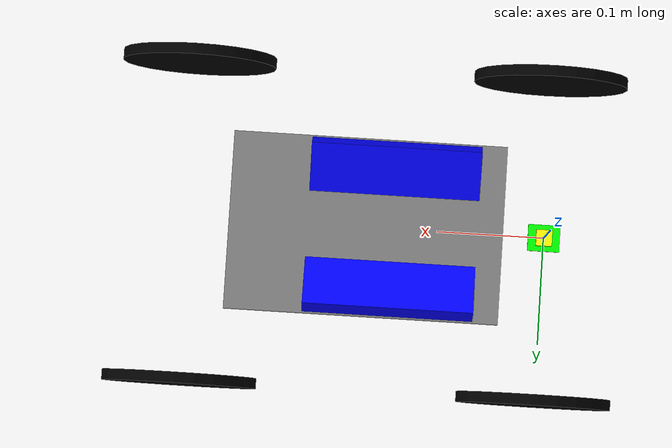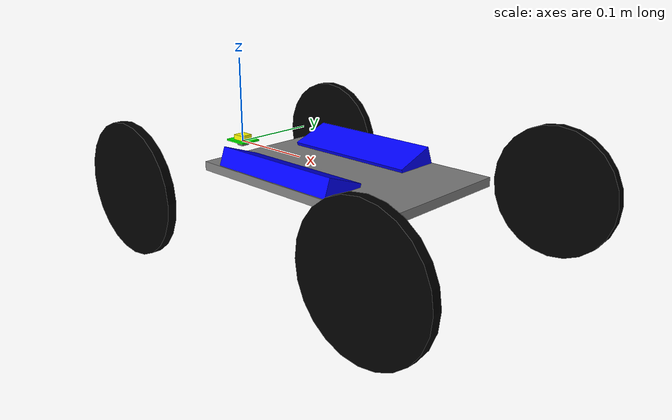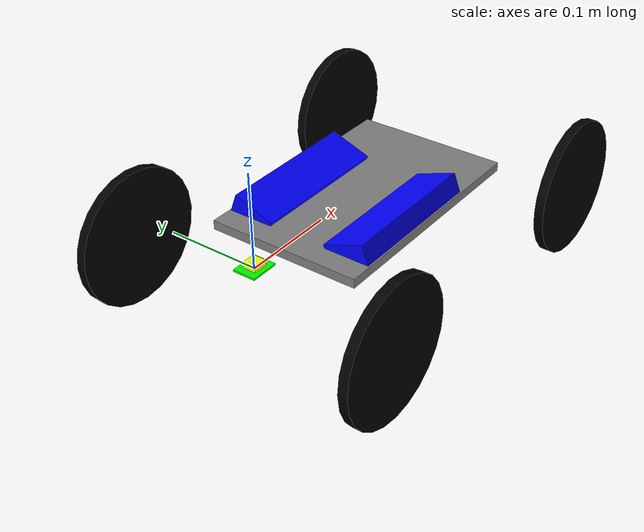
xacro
<?xml version="1.0"?>

<robot name="traxxas" xmlns:xacro="http://www.ros.org/wiki/xacro">

  <!-- Degree-to-radian conversions -->
  <xacro:property name="degrees_45" value="0.785398163"/>
  <xacro:property name="degrees_90" value="1.57079633"/>

  <!-- chassis_length is measured along the x axis, chassis_width
       along the y axis, and chassis_height along the z axis. -->
  <xacro:property name="chassis_length" value="0.258"/>
  <xacro:property name="chassis_width" value="0.168"/>
  <xacro:property name="chassis_height" value="0.01"/>
  <xacro:property name="chassis_mass" value="2.788"/>

  <xacro:property name="battery_x_offset" value="0.055"/>
  <xacro:property name="battery_dist" value="0.065"/>
  <xacro:property name="battery_comp_depth" value="0.02"/>
  <xacro:property name="battery_comp_angle" value="0.34906585"/>
  <xacro:property name="battery_length" value="0.16"/>
  <xacro:property name="battery_width" value="0.047"/>
  <xacro:property name="battery_height" value="0.024"/>
  <xacro:property name="battery_mass" value="0.5025"/>

  <xacro:property name="hub_dia" value="0.09652"/>
  <xacro:property name="tire_dia" value="0.14605"/>
  <xacro:property name="tire_width" value="0.01"/>
  <xacro:property name="hex_hub_depth" value="${tire_width / 2 - axle_length}"/>
  <xacro:property name="wheel_mass" value="0.29"/>

  <xacro:property name="wheelbase" value="0.335"/>
  <xacro:property name="hex_hub_dist" value="0.365"/>
  <xacro:property name="axle_length" value="0.03"/>
  <xacro:property name="wheel_travel" value="0.084"/>
  <xacro:property name="shock_z_offset" value="0.0655"/>

  <xacro:property name="shock_eff_limit" value="12.5106"/>
  <xacro:property name="shock_vel_limit" value="1000"/>

  <xacro:property name="axle_eff_limit" value="5.12766"/>
  <xacro:property name="axle_vel_limit" value="244.8696"/>

  <!-- These constants are used to simulate a Traxxas 2056 servo operated at
       6 V. servo_stall_torque is measured in N m. servo_no_load_speed is
       measured in rad/s. -->
  <xacro:property name="servo_stall_torque" value="3.4"/>
  <xacro:property name="servo_no_load_speed" value="4.553"/>

  <material name="battery_mat">
    <color rgba="0 0 1 1"/>
  </material>
  <material name="chassis_mat">
    <color rgba="0.5 0.5 0.5 1"/>
  </material>
  <material name="tire_mat">
    <color rgba="0 0 0 1"/>
  </material>
  <material name="imu_mat">
    <color rgba="0 1 0 1"/>
  </material>

  <!-- Null inertial element. This is needed to make the model work with
       Gazebo. -->
  <xacro:macro name="null_inertial">
    <inertial>
      <mass value="0.001"/>
      <inertia ixx="0.001" ixy="0" ixz="0" iyy="0.001" iyz="0" izz="0.001"/>
    </inertial>
  </xacro:macro>

  <!-- Inertia of a solid cuboid. Width is measured along the x axis, depth
       along the y axis, and height along the z axis. -->
  <xacro:macro name="solid_cuboid_inertial"
               params="width depth height mass *origin">
    <inertial>
      <xacro:insert_block name="origin"/>
      <mass value="${mass}"/>
      <inertia ixx="${mass * (depth * depth + height * height) / 12}"
               ixy="0" ixz="0"
               iyy="${mass * (width * width + height * height) / 12}"
               iyz="0"
               izz="${mass * (width * width + depth * depth) / 12}"/>
    </inertial>
  </xacro:macro>

  <xacro:macro name="thick_walled_tube_inertial"
               params="inner_rad outer_rad height mass">
    <inertial>
      <mass value="${mass}"/>
      <inertia ixx="${(1 / 12) * mass * (3 * (inner_rad * inner_rad +
                    outer_rad * outer_rad) + height * height)}"
               ixy="0" ixz="0"
               iyy="${(1 / 12) * mass * (3 * (inner_rad * inner_rad +
                    outer_rad * outer_rad) + height * height)}"
               iyz="0"
               izz="${mass * (inner_rad * inner_rad +
                    outer_rad * outer_rad) / 2}"/>
    </inertial>
  </xacro:macro>

  <!-- Battery -->
  <xacro:macro name="battery" params="prefix reflect">
    <joint name="chassis_to_${prefix}_battery" type="fixed">
      <parent link="chassis"/>
      <child link="${prefix}_battery_offset"/>
      <origin xyz="${battery_x_offset - battery_length / 2}
                   ${reflect * battery_dist / 2}
                   0"
              rpy="${reflect * battery_comp_angle} 0 0"/>
    </joint>

    <link name="${prefix}_battery_offset">
      <xacro:null_inertial/>
    </link>

    <joint name="offset_to_${prefix}_battery" type="fixed">
      <parent link="${prefix}_battery_offset"/>
      <child link="${prefix}_battery"/>
      <origin xyz="0
                   ${reflect * battery_width / 2}
                   ${(battery_height / 2) - battery_comp_depth}"/>
    </joint>

    <link name="${prefix}_battery">
      <visual>
        <geometry>
          <box size="${battery_length} ${battery_width} ${battery_height}"/>
        </geometry>
        <material name="battery_mat"/>
      </visual>

      <collision>
        <geometry>
          <box size="${battery_length} ${battery_width} ${battery_height}"/>
        </geometry>
      </collision>

      <xacro:solid_cuboid_inertial
         width="${battery_length}" depth="${battery_width}"
         height="${battery_height}" mass="${battery_mass}">
        <origin/>
      </xacro:solid_cuboid_inertial>
    </link>

    <gazebo reference="${prefix}_battery">
      <material>Gazebo/Blue</material>
    </gazebo>
  </xacro:macro>

  <!-- Shock absorber -->
  <xacro:macro name="shock"
               params="lr_prefix fr_prefix lr_reflect fr_reflect child">
    <joint name="${lr_prefix}_${fr_prefix}_shock" type="fixed">
      <parent link="chassis"/>
      <child link="${child}"/>

      <origin xyz="${fr_reflect * wheelbase / 2}
                   ${lr_reflect * ((hex_hub_dist / 2) - axle_length)}
                   ${(wheel_travel / 2) - shock_z_offset}"/>
      <axis xyz="0 0 -1"/>
      <limit lower="${-wheel_travel / 2}" upper="${wheel_travel / 2}"
             effort="${shock_eff_limit}" velocity="${shock_vel_limit}"/>
    </joint>
  </xacro:macro>

  <!-- The "wheel" macro defines an axle carrier, axle, and wheel. -->
  <xacro:macro name="wheel" params="lr_prefix fr_prefix lr_reflect">
    <link name="${lr_prefix}_${fr_prefix}_axle_carrier">
      <xacro:null_inertial/>
    </link>

    <!-- The left and right axles have the same axis so that identical
         rotation values cause the wheels to rotate in the same direction. -->
    <joint name="${lr_prefix}_${fr_prefix}_axle" type="continuous">
      <parent link="${lr_prefix}_${fr_prefix}_axle_carrier"/>
      <child link="${lr_prefix}_${fr_prefix}_wheel"/>
      <origin rpy="${degrees_90} 0 0"/>
      <axis xyz="0 0 -1"/>
      <limit effort="${axle_eff_limit}" velocity="${axle_vel_limit}"/>
    </joint>

    <link name="${lr_prefix}_${fr_prefix}_wheel">
      <visual>
        <origin xyz="0
                     ${lr_reflect * (axle_length - (tire_width /
                     2 - hex_hub_depth))}
                     0"/>
        <geometry>
          <cylinder radius="${tire_dia / 2}" length="${tire_width}"/>
        </geometry>
        <material name="tire_mat"/>
      </visual>

      <collision>
        <origin xyz="0
                     ${lr_reflect * (axle_length - (tire_width /
                     2 - hex_hub_depth))}
                     0"/>
        <geometry>
          <cylinder radius="${tire_dia / 2}" length="${tire_width}"/>
        </geometry>
      </collision>

      <xacro:thick_walled_tube_inertial
          inner_rad="${hub_dia / 2}" outer_rad="${tire_dia / 2}"
          height="${tire_width}" mass="${wheel_mass}"/>
    </link>

    <gazebo reference="${lr_prefix}_${fr_prefix}_wheel">
      <material>Gazebo/Black</material>
      <mu1>0.9</mu1>
      <mu2>0.9</mu2>
    </gazebo>
  </xacro:macro>

  <!-- Front wheel -->
  <xacro:macro name="front_wheel"
               params="lr_prefix fr_prefix lr_reflect fr_reflect">
    <xacro:shock lr_prefix="${lr_prefix}" fr_prefix="${fr_prefix}"
                 lr_reflect="${lr_reflect}" fr_reflect="${fr_reflect}"
                 child="${lr_prefix}_steering_link"/>

    <link name="${lr_prefix}_steering_link">
      <xacro:null_inertial/>
    </link>

    <joint name="${lr_prefix}_steering_joint" type="revolute">
      <parent link="${lr_prefix}_steering_link"/>
      <child link="${lr_prefix}_${fr_prefix}_axle_carrier"/>
      <axis xyz="0 0 1"/>
      <limit lower="${-degrees_45}" upper="${degrees_45}"
             effort="${servo_stall_torque}" velocity="${servo_no_load_speed}"/>
    </joint>

    <xacro:wheel lr_prefix="${lr_prefix}" fr_prefix="${fr_prefix}"
                 lr_reflect="${lr_reflect}"/>
  </xacro:macro>

  <!-- Rear wheel -->
  <xacro:macro name="rear_wheel"
               params="lr_prefix fr_prefix lr_reflect fr_reflect">
    <xacro:shock lr_prefix="${lr_prefix}" fr_prefix="${fr_prefix}"
                 lr_reflect="${lr_reflect}" fr_reflect="${fr_reflect}"
                 child="${lr_prefix}_${fr_prefix}_axle_carrier"/>
    <xacro:wheel lr_prefix="${lr_prefix}" fr_prefix="${fr_prefix}"
                 lr_reflect="${lr_reflect}"/>
  </xacro:macro>

  <!-- base_link-->
  <link name="base_link">
    <visual>
      <geometry>
        <box size="0.01 0.01 0.01"/>
      </geometry>
      <material name="chassis_mat"/>
    </visual>
  </link>
  <gazebo reference="base_link">
    <material>Gazebo/Grey</material>
  </gazebo>

  <!-- Chassis -->
  <link name="chassis">
    <visual>
      <origin xyz="0 0 ${-chassis_height / 2}"/>
      <geometry>
        <box size="${chassis_length} ${chassis_width} ${chassis_height}"/>
      </geometry>
      <material name="chassis_mat"/>
    </visual>

    <collision>
      <origin xyz="0 0 ${-chassis_height / 2}"/>
      <geometry>
        <box size="${chassis_length} ${chassis_width} ${chassis_height}"/>
      </geometry>
    </collision>

    <xacro:solid_cuboid_inertial
        width="${chassis_length}" depth="${chassis_width}"
        height="${chassis_height}" mass="${chassis_mass}">
      <origin xyz="0 0 ${-chassis_height / 2}"/>
    </xacro:solid_cuboid_inertial>
  </link>
  <gazebo reference="chassis">
    <material>Gazebo/Grey</material>
  </gazebo>

  <joint name="base_link_to_chassis" type="fixed">
    <origin xyz="${wheelbase / 2} 0 0" rpy="0 0 0"/>
    <parent link="base_link"/>
    <child link="chassis"/>
  </joint>

  <!-- Batteries -->
  <xacro:battery prefix="left" reflect="1"/>
  <xacro:battery prefix="right" reflect="-1"/>

  <!-- Wheels -->
  <xacro:front_wheel lr_prefix="left" fr_prefix="front"
                     lr_reflect="1" fr_reflect="1"/>
  <xacro:front_wheel lr_prefix="right" fr_prefix="front"
                     lr_reflect="-1" fr_reflect="1"/>
  <xacro:rear_wheel lr_prefix="left" fr_prefix="rear"
                    lr_reflect="1" fr_reflect="-1"/>
  <xacro:rear_wheel lr_prefix="right" fr_prefix="rear"
                    lr_reflect="-1" fr_reflect="-1"/>

  <!-- IMU frame -->
  <joint name="imu_joint" type="fixed">
    <origin xyz="0 0 0.001" rpy="0 0 0"/>
    <parent link="base_link" />
    <child link="imu_link" />
  </joint>

  <link name="imu_link">
    <visual>
      <geometry>
        <box size="0.030 0.025 0.002"/>
      </geometry>
      <material name="imu_mat"/>
    </visual>
    <inertial>
      <mass value="0.001"/>
      <origin xyz="0 0 0"/>
      <inertia ixx="0.0001" ixy="0.0" ixz="0.0" iyy="0.0001" iyz="0.0" izz="0.0001"/>
    </inertial>
  </link>

  <gazebo reference="imu_link">
    <sensor name="imu" type="imu">
      <always_on>1</always_on>
      <update_rate>200</update_rate>
      <visualize>true</visualize>
      <topic>imu</topic>
      <enable_metrics>true</enable_metrics>
      <gz_frame_id>imu_link</gz_frame_id>

        <imu>
            <!-- Add Gaussian noise to the IMU measurements -->
            <angular_velocity>
                <x>
                <noise type="gaussian">
                    <mean>0.0</mean>
                    <stddev>0.0001</stddev>
                    <bias_mean>0.0</bias_mean>
                    <bias_stddev>0.0</bias_stddev>
                </noise>
                </x>
                <y>
                <noise type="gaussian">
                    <mean>0.0</mean>
                    <stddev>0.0001</stddev>
                    <bias_mean>0.0</bias_mean>
                    <bias_stddev>0.0</bias_stddev>
                </noise>
                </y>
                <z>
                <noise type="gaussian">
                    <mean>0.0</mean>
                    <stddev>0.0001</stddev>
                    <bias_mean>0.0</bias_mean>
                    <bias_stddev>0.0</bias_stddev>
                </noise>
                </z>
            </angular_velocity>
            <linear_acceleration>
                <x>
                <noise type="gaussian">
                    <mean>0.0</mean>
                    <stddev>0.01</stddev>
                    <bias_mean>0.0</bias_mean>
                    <bias_stddev>0.0</bias_stddev>
                </noise>
                </x>
                <y>
                <noise type="gaussian">
                    <mean>0.0</mean>
                    <stddev>0.01</stddev>
                    <bias_mean>0.0</bias_mean>
                    <bias_stddev>0.0</bias_stddev>
                </noise>
                </y>
                <z>
                <noise type="gaussian">
                    <mean>0.0</mean>
                    <stddev>0.01</stddev>
                    <bias_mean>0.0</bias_mean>
                    <bias_stddev>0.0</bias_stddev>
                </noise>
                </z>
            </linear_acceleration>
        </imu>

    </sensor>
  </gazebo>

  <!-- GPS/GNSS sensor -->
  <joint name="gps_joint" type="fixed">
    <origin xyz="0 0 0.004" rpy="0 0 0"/>
    <parent link="imu_link"/>
    <child link="gps_link"/>
  </joint>

  <link name="gps_link">
    <visual>
      <geometry>
        <box size="0.015 0.015 0.006"/>
      </geometry>
      <material name="gps_mat">
        <color rgba="1 1 0 1"/>
      </material>
    </visual>
    <inertial>
      <mass value="0.01"/>
      <origin xyz="0 0 0"/>
      <inertia ixx="0.0001" ixy="0.0" ixz="0.0"
               iyy="0.0001" iyz="0.0" izz="0.0001"/>
    </inertial>
  </link>

  <gazebo reference="gps_link">
    <sensor name="gps" type="navsat">
      <always_on>true</always_on>
      <update_rate>10</update_rate>
      <topic>gps/fix</topic>
      <gz_frame_id>gps_link</gz_frame_id>

      <navsat>
        <position_sensing>
          <horizontal>
            <noise type="gaussian">
              <mean>0.0</mean>
              <stddev>0.00000018</stddev>  <!-- ±2cm horizontal -->
              <bias_mean>0.0</bias_mean>
            </noise>
          </horizontal>

          <vertical>
            <noise type="gaussian">
              <mean>0.0</mean>
              <stddev>0.05</stddev>  <!-- ±5cm vertical -->
              <bias_mean>0.0</bias_mean>
            </noise>
          </vertical>
        </position_sensing>

        <velocity_sensing>
          <horizontal>
            <noise type="gaussian">
              <mean>0.0</mean>
              <stddev>0.01</stddev>  <!-- ±1 cm/s -->
            </noise>
          </horizontal>

          <vertical>
            <noise type="gaussian">
              <mean>0.0</mean>
              <stddev>0.02</stddev>  <!-- ±2 cm/s -->
            </noise>
          </vertical>
        </velocity_sensing>
      </navsat>
    </sensor>
  </gazebo>

  <!-- Ground-truth odometry publisher -->
  <gazebo>
    <plugin filename="gz-sim-odometry-publisher-system"
            name="gz::sim::systems::OdometryPublisher">
      <odom_topic>ground_truth_odom</odom_topic>
      <odom_frame>odom</odom_frame>
      <robot_base_frame>base_link</robot_base_frame>
      <odom_publish_frequency>50</odom_publish_frequency>
    </plugin>
  </gazebo>

  <ros2_control name="GazeboSystem" type="system">
    <hardware>
      <plugin>gz_ros2_control/GazeboSimSystem</plugin>
    </hardware>
      <!-- Rear wheels (driven) -->
    <joint name="left_rear_axle">
      <command_interface name="velocity"/>
      <state_interface name="velocity"/>
      <state_interface name="position"/>
    </joint>

    <joint name="right_rear_axle">
      <command_interface name="velocity"/>
      <state_interface name="velocity"/>
      <state_interface name="position"/>
    </joint>
    <!-- Steering joints -->
    <joint name="left_steering_joint">
      <command_interface name="position"/>
      <state_interface name="position"/>
    </joint>

    <joint name="right_steering_joint">
      <command_interface name="position"/>
      <state_interface name="position"/>
    </joint>
    <!-- Front wheels (passive, only state) -->
    <joint name="left_front_axle">
      <state_interface name="velocity"/>
      <state_interface name="position"/>
    </joint>

    <joint name="right_front_axle">
      <state_interface name="velocity"/>
      <state_interface name="position"/>
    </joint>
  </ros2_control>

  <gazebo>
    <plugin filename="gz_ros2_control-system" name="gz_ros2_control::GazeboSimROS2ControlPlugin">
      <parameters>$(find vehicle_gazebo)/config/ackermann_drive_controller.yaml</parameters>
    </plugin>
  </gazebo>

</robot>
